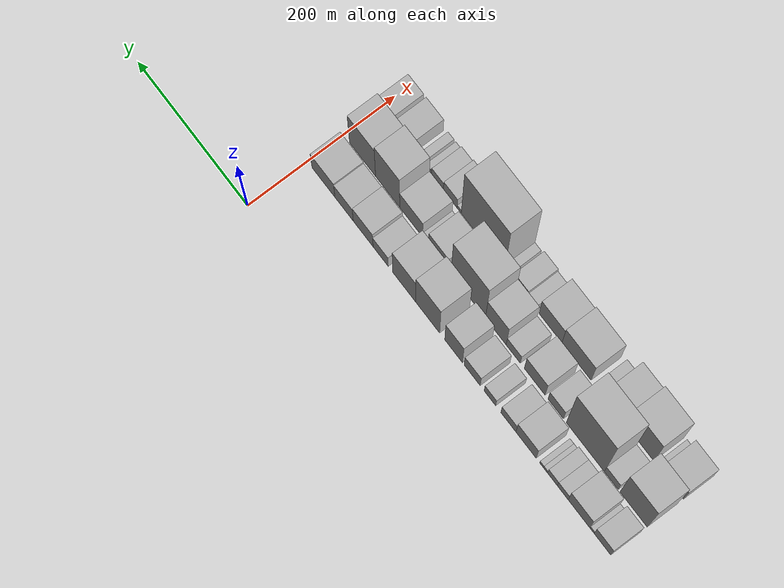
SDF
<sdf version="1.6">
 <world name="default">
  <model name="building_1">
   <static>1</static>
   <pose>100.0000 -521.6150 0 0.000000 0.000000 0.000000</pose>
   <link name="link">
    <pose>0 0 25.50 0 0 0</pose>
    <collision name="collision"><geometry><box><size>40.0000 28.7700 51.0000</size></box></geometry></collision>
    <visual name="visual">
     <cast_shadows>0</cast_shadows>
     <geometry><box><size>40.0000 28.7700 51.0000</size></box></geometry>
     <material>
      <script>
       <uri>model://HANNAS_wall/materials/scripts</uri>
       <uri>model://HANNAS_wall/materials/textures</uri>
       <name>vrc/HANNAS_wall</name>
      </script>
     </material>
    </visual>
   </link>
  </model>
  <model name="building_2">
   <static>1</static>
   <pose>100.0000 -503.5471 0 0.000000 0.000000 0.000000</pose>
   <link name="link">
    <pose>0 0 7.50 0 0 0</pose>
    <collision name="collision"><geometry><box><size>40.0000 7.3658 15.0000</size></box></geometry></collision>
    <visual name="visual">
     <cast_shadows>0</cast_shadows>
     <geometry><box><size>40.0000 7.3658 15.0000</size></box></geometry>
     <material>
      <script>
       <uri>model://HANNAS_wall/materials/scripts</uri>
       <uri>model://HANNAS_wall/materials/textures</uri>
       <name>vrc/HANNAS_wall</name>
      </script>
     </material>
    </visual>
   </link>
  </model>
  <model name="building_3">
   <static>1</static>
   <pose>100.0000 -481.0259 0 0.000000 0.000000 0.000000</pose>
   <link name="link">
    <pose>0 0 34.50 0 0 0</pose>
    <collision name="collision"><geometry><box><size>40.0000 37.6766 69.0000</size></box></geometry></collision>
    <visual name="visual">
     <cast_shadows>0</cast_shadows>
     <geometry><box><size>40.0000 37.6766 69.0000</size></box></geometry>
     <material>
      <script>
       <uri>model://HANNAS_wall/materials/scripts</uri>
       <uri>model://HANNAS_wall/materials/textures</uri>
       <name>vrc/HANNAS_wall</name>
      </script>
     </material>
    </visual>
   </link>
  </model>
  <model name="building_4">
   <static>1</static>
   <pose>100.0000 -452.8292 0 0.000000 0.000000 0.000000</pose>
   <link name="link">
    <pose>0 0 16.50 0 0 0</pose>
    <collision name="collision"><geometry><box><size>40.0000 18.7168 33.0000</size></box></geometry></collision>
    <visual name="visual">
     <cast_shadows>0</cast_shadows>
     <geometry><box><size>40.0000 18.7168 33.0000</size></box></geometry>
     <material>
      <script>
       <uri>model://HANNAS_wall/materials/scripts</uri>
       <uri>model://HANNAS_wall/materials/textures</uri>
       <name>vrc/HANNAS_wall</name>
      </script>
     </material>
    </visual>
   </link>
  </model>
  <model name="building_5">
   <static>1</static>
   <pose>100.0000 -434.8815 0 0.000000 0.000000 0.000000</pose>
   <link name="link">
    <pose>0 0 16.50 0 0 0</pose>
    <collision name="collision"><geometry><box><size>40.0000 17.1787 33.0000</size></box></geometry></collision>
    <visual name="visual">
     <cast_shadows>0</cast_shadows>
     <geometry><box><size>40.0000 17.1787 33.0000</size></box></geometry>
     <material>
      <script>
       <uri>model://HANNAS_wall/materials/scripts</uri>
       <uri>model://HANNAS_wall/materials/textures</uri>
       <name>vrc/HANNAS_wall</name>
      </script>
     </material>
    </visual>
   </link>
  </model>
  <model name="building_6">
   <static>1</static>
   <pose>100.0000 -422.8432 0 0.000000 0.000000 0.000000</pose>
   <link name="link">
    <pose>0 0 7.50 0 0 0</pose>
    <collision name="collision"><geometry><box><size>40.0000 6.8978 15.0000</size></box></geometry></collision>
    <visual name="visual">
     <cast_shadows>0</cast_shadows>
     <geometry><box><size>40.0000 6.8978 15.0000</size></box></geometry>
     <material>
      <script>
       <uri>model://HANNAS_wall/materials/scripts</uri>
       <uri>model://HANNAS_wall/materials/textures</uri>
       <name>vrc/HANNAS_wall</name>
      </script>
     </material>
    </visual>
   </link>
  </model>
  <model name="building_7">
   <static>1</static>
   <pose>100.0000 -415.9472 0 0.000000 0.000000 0.000000</pose>
   <link name="link">
    <pose>0 0 7.50 0 0 0</pose>
    <collision name="collision"><geometry><box><size>40.0000 6.8943 15.0000</size></box></geometry></collision>
    <visual name="visual">
     <cast_shadows>0</cast_shadows>
     <geometry><box><size>40.0000 6.8943 15.0000</size></box></geometry>
     <material>
      <script>
       <uri>model://HANNAS_wall/materials/scripts</uri>
       <uri>model://HANNAS_wall/materials/textures</uri>
       <name>vrc/HANNAS_wall</name>
      </script>
     </material>
    </visual>
   </link>
  </model>
  <model name="building_8">
   <static>1</static>
   <pose>100.0000 -388.7740 0 0.000000 0.000000 0.000000</pose>
   <link name="link">
    <pose>0 0 33.00 0 0 0</pose>
    <collision name="collision"><geometry><box><size>40.0000 35.4521 66.0000</size></box></geometry></collision>
    <visual name="visual">
     <cast_shadows>0</cast_shadows>
     <geometry><box><size>40.0000 35.4521 66.0000</size></box></geometry>
     <material>
      <script>
       <uri>model://HANNAS_wall/materials/scripts</uri>
       <uri>model://HANNAS_wall/materials/textures</uri>
       <name>vrc/HANNAS_wall</name>
      </script>
     </material>
    </visual>
   </link>
  </model>
  <model name="building_9">
   <static>1</static>
   <pose>100.0000 -357.8860 0 0.000000 0.000000 0.000000</pose>
   <link name="link">
    <pose>0 0 22.50 0 0 0</pose>
    <collision name="collision"><geometry><box><size>40.0000 26.3239 45.0000</size></box></geometry></collision>
    <visual name="visual">
     <cast_shadows>0</cast_shadows>
     <geometry><box><size>40.0000 26.3239 45.0000</size></box></geometry>
     <material>
      <script>
       <uri>model://HANNAS_wall/materials/scripts</uri>
       <uri>model://HANNAS_wall/materials/textures</uri>
       <name>vrc/HANNAS_wall</name>
      </script>
     </material>
    </visual>
   </link>
  </model>
  <model name="building_10">
   <static>1</static>
   <pose>100.0000 -325.5887 0 0.000000 0.000000 0.000000</pose>
   <link name="link">
    <pose>0 0 19.50 0 0 0</pose>
    <collision name="collision"><geometry><box><size>40.0000 20.2706 39.0000</size></box></geometry></collision>
    <visual name="visual">
     <cast_shadows>0</cast_shadows>
     <geometry><box><size>40.0000 20.2706 39.0000</size></box></geometry>
     <material>
      <script>
       <uri>model://HANNAS_wall/materials/scripts</uri>
       <uri>model://HANNAS_wall/materials/textures</uri>
       <name>vrc/HANNAS_wall</name>
      </script>
     </material>
    </visual>
   </link>
  </model>
  <model name="building_11">
   <static>1</static>
   <pose>100.0000 -294.3115 0 0.000000 0.000000 0.000000</pose>
   <link name="link">
    <pose>0 0 27.00 0 0 0</pose>
    <collision name="collision"><geometry><box><size>40.0000 28.2839 54.0000</size></box></geometry></collision>
    <visual name="visual">
     <cast_shadows>0</cast_shadows>
     <geometry><box><size>40.0000 28.2839 54.0000</size></box></geometry>
     <material>
      <script>
       <uri>model://HANNAS_wall/materials/scripts</uri>
       <uri>model://HANNAS_wall/materials/textures</uri>
       <name>vrc/HANNAS_wall</name>
      </script>
     </material>
    </visual>
   </link>
  </model>
  <model name="building_12">
   <static>1</static>
   <pose>100.0000 -261.5331 0 0.000000 0.000000 0.000000</pose>
   <link name="link">
    <pose>0 0 49.50 0 0 0</pose>
    <collision name="collision"><geometry><box><size>40.0000 31.2730 99.0000</size></box></geometry></collision>
    <visual name="visual">
     <cast_shadows>0</cast_shadows>
     <geometry><box><size>40.0000 31.2730 99.0000</size></box></geometry>
     <material>
      <script>
       <uri>model://HANNAS_wall/materials/scripts</uri>
       <uri>model://HANNAS_wall/materials/textures</uri>
       <name>vrc/HANNAS_wall</name>
      </script>
     </material>
    </visual>
   </link>
  </model>
  <model name="building_13">
   <static>1</static>
   <pose>100.0000 -215.6549 0 0.000000 0.000000 0.000000</pose>
   <link name="link">
    <pose>0 0 70.50 0 0 0</pose>
    <collision name="collision"><geometry><box><size>40.0000 42.4833 141.0000</size></box></geometry></collision>
    <visual name="visual">
     <cast_shadows>0</cast_shadows>
     <geometry><box><size>40.0000 42.4833 141.0000</size></box></geometry>
     <material>
      <script>
       <uri>model://HANNAS_wall/materials/scripts</uri>
       <uri>model://HANNAS_wall/materials/textures</uri>
       <name>vrc/HANNAS_wall</name>
      </script>
     </material>
    </visual>
   </link>
  </model>
  <model name="building_14">
   <static>1</static>
   <pose>100.0000 -174.0290 0 0.000000 0.000000 0.000000</pose>
   <link name="link">
    <pose>0 0 57.00 0 0 0</pose>
    <collision name="collision"><geometry><box><size>40.0000 40.7685 114.0000</size></box></geometry></collision>
    <visual name="visual">
     <cast_shadows>0</cast_shadows>
     <geometry><box><size>40.0000 40.7685 114.0000</size></box></geometry>
     <material>
      <script>
       <uri>model://HANNAS_wall/materials/scripts</uri>
       <uri>model://HANNAS_wall/materials/textures</uri>
       <name>vrc/HANNAS_wall</name>
      </script>
     </material>
    </visual>
   </link>
  </model>
  <model name="building_15">
   <static>1</static>
   <pose>100.0000 -132.1360 0 0.000000 0.000000 0.000000</pose>
   <link name="link">
    <pose>0 0 25.50 0 0 0</pose>
    <collision name="collision"><geometry><box><size>40.0000 27.0176 51.0000</size></box></geometry></collision>
    <visual name="visual">
     <cast_shadows>0</cast_shadows>
     <geometry><box><size>40.0000 27.0176 51.0000</size></box></geometry>
     <material>
      <script>
       <uri>model://HANNAS_wall/materials/scripts</uri>
       <uri>model://HANNAS_wall/materials/textures</uri>
       <name>vrc/HANNAS_wall</name>
      </script>
     </material>
    </visual>
   </link>
  </model>
  <model name="building_16">
   <static>1</static>
   <pose>100.0000 -100.8448 0 0.000000 0.000000 0.000000</pose>
   <link name="link">
    <pose>0 0 34.50 0 0 0</pose>
    <collision name="collision"><geometry><box><size>40.0000 35.5646 69.0000</size></box></geometry></collision>
    <visual name="visual">
     <cast_shadows>0</cast_shadows>
     <geometry><box><size>40.0000 35.5646 69.0000</size></box></geometry>
     <material>
      <script>
       <uri>model://HANNAS_wall/materials/scripts</uri>
       <uri>model://HANNAS_wall/materials/textures</uri>
       <name>vrc/HANNAS_wall</name>
      </script>
     </material>
    </visual>
   </link>
  </model>
  <model name="building_17">
   <static>1</static>
   <pose>100.0000 -66.6358 0 0.000000 0.000000 0.000000</pose>
   <link name="link">
    <pose>0 0 31.50 0 0 0</pose>
    <collision name="collision"><geometry><box><size>40.0000 32.8534 63.0000</size></box></geometry></collision>
    <visual name="visual">
     <cast_shadows>0</cast_shadows>
     <geometry><box><size>40.0000 32.8534 63.0000</size></box></geometry>
     <material>
      <script>
       <uri>model://HANNAS_wall/materials/scripts</uri>
       <uri>model://HANNAS_wall/materials/textures</uri>
       <name>vrc/HANNAS_wall</name>
      </script>
     </material>
    </visual>
   </link>
  </model>
  <model name="building_18">
   <static>1</static>
   <pose>100.0000 -29.5664 0 0.000000 0.000000 0.000000</pose>
   <link name="link">
    <pose>0 0 34.50 0 0 0</pose>
    <collision name="collision"><geometry><box><size>40.0000 41.2854 69.0000</size></box></geometry></collision>
    <visual name="visual">
     <cast_shadows>0</cast_shadows>
     <geometry><box><size>40.0000 41.2854 69.0000</size></box></geometry>
     <material>
      <script>
       <uri>model://HANNAS_wall/materials/scripts</uri>
       <uri>model://HANNAS_wall/materials/textures</uri>
       <name>vrc/HANNAS_wall</name>
      </script>
     </material>
    </visual>
   </link>
  </model>
  <model name="building_34">
   <static>1</static>
   <pose>149.0000 -512.4426 0 0.000000 0.000000 0.000000</pose>
   <link name="link">
    <pose>0 0 75.00 0 0 0</pose>
    <collision name="collision"><geometry><box><size>40.0000 47.1148 150.0000</size></box></geometry></collision>
    <visual name="visual">
     <cast_shadows>0</cast_shadows>
     <geometry><box><size>40.0000 47.1148 150.0000</size></box></geometry>
     <material>
      <script>
       <uri>model://HANNAS_wall/materials/scripts</uri>
       <uri>model://HANNAS_wall/materials/textures</uri>
       <name>vrc/HANNAS_wall</name>
      </script>
     </material>
    </visual>
   </link>
  </model>
  <model name="building_35">
   <static>1</static>
   <pose>149.0000 -473.7912 0 0.000000 0.000000 0.000000</pose>
   <link name="link">
    <pose>0 0 21.00 0 0 0</pose>
    <collision name="collision"><geometry><box><size>40.0000 24.1881 42.0000</size></box></geometry></collision>
    <visual name="visual">
     <cast_shadows>0</cast_shadows>
     <geometry><box><size>40.0000 24.1881 42.0000</size></box></geometry>
     <material>
      <script>
       <uri>model://HANNAS_wall/materials/scripts</uri>
       <uri>model://HANNAS_wall/materials/textures</uri>
       <name>vrc/HANNAS_wall</name>
      </script>
     </material>
    </visual>
   </link>
  </model>
  <model name="building_36">
   <static>1</static>
   <pose>149.0000 -428.6505 0 0.000000 0.000000 0.000000</pose>
   <link name="link">
    <pose>0 0 105.00 0 0 0</pose>
    <collision name="collision"><geometry><box><size>40.0000 66.0934 210.0000</size></box></geometry></collision>
    <visual name="visual">
     <cast_shadows>0</cast_shadows>
     <geometry><box><size>40.0000 66.0934 210.0000</size></box></geometry>
     <material>
      <script>
       <uri>model://HANNAS_wall/materials/scripts</uri>
       <uri>model://HANNAS_wall/materials/textures</uri>
       <name>vrc/HANNAS_wall</name>
      </script>
     </material>
    </visual>
   </link>
  </model>
  <model name="building_37">
   <static>1</static>
   <pose>149.0000 -377.1060 0 0.000000 0.000000 0.000000</pose>
   <link name="link">
    <pose>0 0 25.50 0 0 0</pose>
    <collision name="collision"><geometry><box><size>40.0000 26.9956 51.0000</size></box></geometry></collision>
    <visual name="visual">
     <cast_shadows>0</cast_shadows>
     <geometry><box><size>40.0000 26.9956 51.0000</size></box></geometry>
     <material>
      <script>
       <uri>model://HANNAS_wall/materials/scripts</uri>
       <uri>model://HANNAS_wall/materials/textures</uri>
       <name>vrc/HANNAS_wall</name>
      </script>
     </material>
    </visual>
   </link>
  </model>
  <model name="building_38">
   <static>1</static>
   <pose>149.0000 -340.4035 0 0.000000 0.000000 0.000000</pose>
   <link name="link">
    <pose>0 0 36.00 0 0 0</pose>
    <collision name="collision"><geometry><box><size>40.0000 36.4095 72.0000</size></box></geometry></collision>
    <visual name="visual">
     <cast_shadows>0</cast_shadows>
     <geometry><box><size>40.0000 36.4095 72.0000</size></box></geometry>
     <material>
      <script>
       <uri>model://HANNAS_wall/materials/scripts</uri>
       <uri>model://HANNAS_wall/materials/textures</uri>
       <name>vrc/HANNAS_wall</name>
      </script>
     </material>
    </visual>
   </link>
  </model>
  <model name="building_39">
   <static>1</static>
   <pose>149.0000 -302.6995 0 0.000000 0.000000 0.000000</pose>
   <link name="link">
    <pose>0 0 22.50 0 0 0</pose>
    <collision name="collision"><geometry><box><size>40.0000 24.9985 45.0000</size></box></geometry></collision>
    <visual name="visual">
     <cast_shadows>0</cast_shadows>
     <geometry><box><size>40.0000 24.9985 45.0000</size></box></geometry>
     <material>
      <script>
       <uri>model://HANNAS_wall/materials/scripts</uri>
       <uri>model://HANNAS_wall/materials/textures</uri>
       <name>vrc/HANNAS_wall</name>
      </script>
     </material>
    </visual>
   </link>
  </model>
  <model name="building_40">
   <static>1</static>
   <pose>149.0000 -271.9378 0 0.000000 0.000000 0.000000</pose>
   <link name="link">
    <pose>0 0 52.50 0 0 0</pose>
    <collision name="collision"><geometry><box><size>40.0000 36.5248 105.0000</size></box></geometry></collision>
    <visual name="visual">
     <cast_shadows>0</cast_shadows>
     <geometry><box><size>40.0000 36.5248 105.0000</size></box></geometry>
     <material>
      <script>
       <uri>model://HANNAS_wall/materials/scripts</uri>
       <uri>model://HANNAS_wall/materials/textures</uri>
       <name>vrc/HANNAS_wall</name>
      </script>
     </material>
    </visual>
   </link>
  </model>
  <model name="building_41">
   <static>1</static>
   <pose>149.0000 -223.2743 0 0.000000 0.000000 0.000000</pose>
   <link name="link">
    <pose>0 0 87.00 0 0 0</pose>
    <collision name="collision"><geometry><box><size>40.0000 60.8022 174.0000</size></box></geometry></collision>
    <visual name="visual">
     <cast_shadows>0</cast_shadows>
     <geometry><box><size>40.0000 60.8022 174.0000</size></box></geometry>
     <material>
      <script>
       <uri>model://HANNAS_wall/materials/scripts</uri>
       <uri>model://HANNAS_wall/materials/textures</uri>
       <name>vrc/HANNAS_wall</name>
      </script>
     </material>
    </visual>
   </link>
  </model>
  <model name="building_42">
   <static>1</static>
   <pose>149.0000 -170.3373 0 0.000000 0.000000 0.000000</pose>
   <link name="link">
    <pose>0 0 31.50 0 0 0</pose>
    <collision name="collision"><geometry><box><size>40.0000 35.0718 63.0000</size></box></geometry></collision>
    <visual name="visual">
     <cast_shadows>0</cast_shadows>
     <geometry><box><size>40.0000 35.0718 63.0000</size></box></geometry>
     <material>
      <script>
       <uri>model://HANNAS_wall/materials/scripts</uri>
       <uri>model://HANNAS_wall/materials/textures</uri>
       <name>vrc/HANNAS_wall</name>
      </script>
     </material>
    </visual>
   </link>
  </model>
  <model name="building_43">
   <static>1</static>
   <pose>149.0000 -147.5748 0 0.000000 0.000000 0.000000</pose>
   <link name="link">
    <pose>0 0 12.00 0 0 0</pose>
    <collision name="collision"><geometry><box><size>40.0000 10.4531 24.0000</size></box></geometry></collision>
    <visual name="visual">
     <cast_shadows>0</cast_shadows>
     <geometry><box><size>40.0000 10.4531 24.0000</size></box></geometry>
     <material>
      <script>
       <uri>model://HANNAS_wall/materials/scripts</uri>
       <uri>model://HANNAS_wall/materials/textures</uri>
       <name>vrc/HANNAS_wall</name>
      </script>
     </material>
    </visual>
   </link>
  </model>
  <model name="building_44">
   <static>1</static>
   <pose>149.0000 -121.9621 0 0.000000 0.000000 0.000000</pose>
   <link name="link">
    <pose>0 0 37.50 0 0 0</pose>
    <collision name="collision"><geometry><box><size>40.0000 40.7721 75.0000</size></box></geometry></collision>
    <visual name="visual">
     <cast_shadows>0</cast_shadows>
     <geometry><box><size>40.0000 40.7721 75.0000</size></box></geometry>
     <material>
      <script>
       <uri>model://HANNAS_wall/materials/scripts</uri>
       <uri>model://HANNAS_wall/materials/textures</uri>
       <name>vrc/HANNAS_wall</name>
      </script>
     </material>
    </visual>
   </link>
  </model>
  <model name="building_45">
   <static>1</static>
   <pose>149.0000 -79.8908 0 0.000000 0.000000 0.000000</pose>
   <link name="link">
    <pose>0 0 72.00 0 0 0</pose>
    <collision name="collision"><geometry><box><size>40.0000 43.3705 144.0000</size></box></geometry></collision>
    <visual name="visual">
     <cast_shadows>0</cast_shadows>
     <geometry><box><size>40.0000 43.3705 144.0000</size></box></geometry>
     <material>
      <script>
       <uri>model://HANNAS_wall/materials/scripts</uri>
       <uri>model://HANNAS_wall/materials/textures</uri>
       <name>vrc/HANNAS_wall</name>
      </script>
     </material>
    </visual>
   </link>
  </model>
  <model name="building_46">
   <static>1</static>
   <pose>149.0000 -34.8146 0 0.000000 0.000000 0.000000</pose>
   <link name="link">
    <pose>0 0 64.50 0 0 0</pose>
    <collision name="collision"><geometry><box><size>40.0000 46.7821 129.0000</size></box></geometry></collision>
    <visual name="visual">
     <cast_shadows>0</cast_shadows>
     <geometry><box><size>40.0000 46.7821 129.0000</size></box></geometry>
     <material>
      <script>
       <uri>model://HANNAS_wall/materials/scripts</uri>
       <uri>model://HANNAS_wall/materials/textures</uri>
       <name>vrc/HANNAS_wall</name>
      </script>
     </material>
    </visual>
   </link>
  </model>
  <model name="building_64">
   <static>1</static>
   <pose>198.0000 -516.4063 0 0.000000 0.000000 0.000000</pose>
   <link name="link">
    <pose>0 0 33.00 0 0 0</pose>
    <collision name="collision"><geometry><box><size>40.0000 39.1875 66.0000</size></box></geometry></collision>
    <visual name="visual">
     <cast_shadows>0</cast_shadows>
     <geometry><box><size>40.0000 39.1875 66.0000</size></box></geometry>
     <material>
      <script>
       <uri>model://HANNAS_wall/materials/scripts</uri>
       <uri>model://HANNAS_wall/materials/textures</uri>
       <name>vrc/HANNAS_wall</name>
      </script>
     </material>
    </visual>
   </link>
  </model>
  <model name="building_65">
   <static>1</static>
   <pose>198.0000 -492.7581 0 0.000000 0.000000 0.000000</pose>
   <link name="link">
    <pose>0 0 9.00 0 0 0</pose>
    <collision name="collision"><geometry><box><size>40.0000 8.1089 18.0000</size></box></geometry></collision>
    <visual name="visual">
     <cast_shadows>0</cast_shadows>
     <geometry><box><size>40.0000 8.1089 18.0000</size></box></geometry>
     <material>
      <script>
       <uri>model://HANNAS_wall/materials/scripts</uri>
       <uri>model://HANNAS_wall/materials/textures</uri>
       <name>vrc/HANNAS_wall</name>
      </script>
     </material>
    </visual>
   </link>
  </model>
  <model name="building_66">
   <static>1</static>
   <pose>198.0000 -460.4616 0 0.000000 0.000000 0.000000</pose>
   <link name="link">
    <pose>0 0 64.50 0 0 0</pose>
    <collision name="collision"><geometry><box><size>40.0000 48.4841 129.0000</size></box></geometry></collision>
    <visual name="visual">
     <cast_shadows>0</cast_shadows>
     <geometry><box><size>40.0000 48.4841 129.0000</size></box></geometry>
     <material>
      <script>
       <uri>model://HANNAS_wall/materials/scripts</uri>
       <uri>model://HANNAS_wall/materials/textures</uri>
       <name>vrc/HANNAS_wall</name>
      </script>
     </material>
    </visual>
   </link>
  </model>
  <model name="building_67">
   <static>1</static>
   <pose>198.0000 -418.8026 0 0.000000 0.000000 0.000000</pose>
   <link name="link">
    <pose>0 0 55.50 0 0 0</pose>
    <collision name="collision"><geometry><box><size>40.0000 34.8338 111.0000</size></box></geometry></collision>
    <visual name="visual">
     <cast_shadows>0</cast_shadows>
     <geometry><box><size>40.0000 34.8338 111.0000</size></box></geometry>
     <material>
      <script>
       <uri>model://HANNAS_wall/materials/scripts</uri>
       <uri>model://HANNAS_wall/materials/textures</uri>
       <name>vrc/HANNAS_wall</name>
      </script>
     </material>
    </visual>
   </link>
  </model>
  <model name="building_68">
   <static>1</static>
   <pose>198.0000 -392.5256 0 0.000000 0.000000 0.000000</pose>
   <link name="link">
    <pose>0 0 16.50 0 0 0</pose>
    <collision name="collision"><geometry><box><size>40.0000 17.7202 33.0000</size></box></geometry></collision>
    <visual name="visual">
     <cast_shadows>0</cast_shadows>
     <geometry><box><size>40.0000 17.7202 33.0000</size></box></geometry>
     <material>
      <script>
       <uri>model://HANNAS_wall/materials/scripts</uri>
       <uri>model://HANNAS_wall/materials/textures</uri>
       <name>vrc/HANNAS_wall</name>
      </script>
     </material>
    </visual>
   </link>
  </model>
  <model name="building_69">
   <static>1</static>
   <pose>198.0000 -350.1595 0 0.000000 0.000000 0.000000</pose>
   <link name="link">
    <pose>0 0 45.00 0 0 0</pose>
    <collision name="collision"><geometry><box><size>40.0000 51.0120 90.0000</size></box></geometry></collision>
    <visual name="visual">
     <cast_shadows>0</cast_shadows>
     <geometry><box><size>40.0000 51.0120 90.0000</size></box></geometry>
     <material>
      <script>
       <uri>model://HANNAS_wall/materials/scripts</uri>
       <uri>model://HANNAS_wall/materials/textures</uri>
       <name>vrc/HANNAS_wall</name>
      </script>
     </material>
    </visual>
   </link>
  </model>
  <model name="building_70">
   <static>1</static>
   <pose>198.0000 -304.5353 0 0.000000 0.000000 0.000000</pose>
   <link name="link">
    <pose>0 0 39.00 0 0 0</pose>
    <collision name="collision"><geometry><box><size>40.0000 40.2365 78.0000</size></box></geometry></collision>
    <visual name="visual">
     <cast_shadows>0</cast_shadows>
     <geometry><box><size>40.0000 40.2365 78.0000</size></box></geometry>
     <material>
      <script>
       <uri>model://HANNAS_wall/materials/scripts</uri>
       <uri>model://HANNAS_wall/materials/textures</uri>
       <name>vrc/HANNAS_wall</name>
      </script>
     </material>
    </visual>
   </link>
  </model>
  <model name="building_71">
   <static>1</static>
   <pose>198.0000 -272.0760 0 0.000000 0.000000 0.000000</pose>
   <link name="link">
    <pose>0 0 15.00 0 0 0</pose>
    <collision name="collision"><geometry><box><size>40.0000 16.6822 30.0000</size></box></geometry></collision>
    <visual name="visual">
     <cast_shadows>0</cast_shadows>
     <geometry><box><size>40.0000 16.6822 30.0000</size></box></geometry>
     <material>
      <script>
       <uri>model://HANNAS_wall/materials/scripts</uri>
       <uri>model://HANNAS_wall/materials/textures</uri>
       <name>vrc/HANNAS_wall</name>
      </script>
     </material>
    </visual>
   </link>
  </model>
  <model name="building_72">
   <static>1</static>
   <pose>198.0000 -251.3331 0 0.000000 0.000000 0.000000</pose>
   <link name="link">
    <pose>0 0 21.00 0 0 0</pose>
    <collision name="collision"><geometry><box><size>40.0000 24.8036 42.0000</size></box></geometry></collision>
    <visual name="visual">
     <cast_shadows>0</cast_shadows>
     <geometry><box><size>40.0000 24.8036 42.0000</size></box></geometry>
     <material>
      <script>
       <uri>model://HANNAS_wall/materials/scripts</uri>
       <uri>model://HANNAS_wall/materials/textures</uri>
       <name>vrc/HANNAS_wall</name>
      </script>
     </material>
    </visual>
   </link>
  </model>
  <model name="building_73">
   <static>1</static>
   <pose>198.0000 -229.3434 0 0.000000 0.000000 0.000000</pose>
   <link name="link">
    <pose>0 0 13.50 0 0 0</pose>
    <collision name="collision"><geometry><box><size>40.0000 11.1757 27.0000</size></box></geometry></collision>
    <visual name="visual">
     <cast_shadows>0</cast_shadows>
     <geometry><box><size>40.0000 11.1757 27.0000</size></box></geometry>
     <material>
      <script>
       <uri>model://HANNAS_wall/materials/scripts</uri>
       <uri>model://HANNAS_wall/materials/textures</uri>
       <name>vrc/HANNAS_wall</name>
      </script>
     </material>
    </visual>
   </link>
  </model>
  <model name="building_74">
   <static>1</static>
   <pose>198.0000 -185.3201 0 0.000000 0.000000 0.000000</pose>
   <link name="link">
    <pose>0 0 102.00 0 0 0</pose>
    <collision name="collision"><geometry><box><size>40.0000 76.8711 204.0000</size></box></geometry></collision>
    <visual name="visual">
     <cast_shadows>0</cast_shadows>
     <geometry><box><size>40.0000 76.8711 204.0000</size></box></geometry>
     <material>
      <script>
       <uri>model://HANNAS_wall/materials/scripts</uri>
       <uri>model://HANNAS_wall/materials/textures</uri>
       <name>vrc/HANNAS_wall</name>
      </script>
     </material>
    </visual>
   </link>
  </model>
  <model name="building_75">
   <static>1</static>
   <pose>198.0000 -143.2067 0 0.000000 0.000000 0.000000</pose>
   <link name="link">
    <pose>0 0 7.50 0 0 0</pose>
    <collision name="collision"><geometry><box><size>40.0000 7.3557 15.0000</size></box></geometry></collision>
    <visual name="visual">
     <cast_shadows>0</cast_shadows>
     <geometry><box><size>40.0000 7.3557 15.0000</size></box></geometry>
     <material>
      <script>
       <uri>model://HANNAS_wall/materials/scripts</uri>
       <uri>model://HANNAS_wall/materials/textures</uri>
       <name>vrc/HANNAS_wall</name>
      </script>
     </material>
    </visual>
   </link>
  </model>
  <model name="building_76">
   <static>1</static>
   <pose>198.0000 -127.3679 0 0.000000 0.000000 0.000000</pose>
   <link name="link">
    <pose>0 0 22.50 0 0 0</pose>
    <collision name="collision"><geometry><box><size>40.0000 24.3219 45.0000</size></box></geometry></collision>
    <visual name="visual">
     <cast_shadows>0</cast_shadows>
     <geometry><box><size>40.0000 24.3219 45.0000</size></box></geometry>
     <material>
      <script>
       <uri>model://HANNAS_wall/materials/scripts</uri>
       <uri>model://HANNAS_wall/materials/textures</uri>
       <name>vrc/HANNAS_wall</name>
      </script>
     </material>
    </visual>
   </link>
  </model>
  <model name="building_77">
   <static>1</static>
   <pose>198.0000 -104.6238 0 0.000000 0.000000 0.000000</pose>
   <link name="link">
    <pose>0 0 18.00 0 0 0</pose>
    <collision name="collision"><geometry><box><size>40.0000 21.1663 36.0000</size></box></geometry></collision>
    <visual name="visual">
     <cast_shadows>0</cast_shadows>
     <geometry><box><size>40.0000 21.1663 36.0000</size></box></geometry>
     <material>
      <script>
       <uri>model://HANNAS_wall/materials/scripts</uri>
       <uri>model://HANNAS_wall/materials/textures</uri>
       <name>vrc/HANNAS_wall</name>
      </script>
     </material>
    </visual>
   </link>
  </model>
  <model name="building_78">
   <static>1</static>
   <pose>198.0000 -89.1447 0 0.000000 0.000000 0.000000</pose>
   <link name="link">
    <pose>0 0 12.00 0 0 0</pose>
    <collision name="collision"><geometry><box><size>40.0000 9.7917 24.0000</size></box></geometry></collision>
    <visual name="visual">
     <cast_shadows>0</cast_shadows>
     <geometry><box><size>40.0000 9.7917 24.0000</size></box></geometry>
     <material>
      <script>
       <uri>model://HANNAS_wall/materials/scripts</uri>
       <uri>model://HANNAS_wall/materials/textures</uri>
       <name>vrc/HANNAS_wall</name>
      </script>
     </material>
    </visual>
   </link>
  </model>
  <model name="building_79">
   <static>1</static>
   <pose>198.0000 -75.8667 0 0.000000 0.000000 0.000000</pose>
   <link name="link">
    <pose>0 0 12.00 0 0 0</pose>
    <collision name="collision"><geometry><box><size>40.0000 10.7644 24.0000</size></box></geometry></collision>
    <visual name="visual">
     <cast_shadows>0</cast_shadows>
     <geometry><box><size>40.0000 10.7644 24.0000</size></box></geometry>
     <material>
      <script>
       <uri>model://HANNAS_wall/materials/scripts</uri>
       <uri>model://HANNAS_wall/materials/textures</uri>
       <name>vrc/HANNAS_wall</name>
      </script>
     </material>
    </visual>
   </link>
  </model>
  <model name="building_80">
   <static>1</static>
   <pose>198.0000 -46.9255 0 0.000000 0.000000 0.000000</pose>
   <link name="link">
    <pose>0 0 27.00 0 0 0</pose>
    <collision name="collision"><geometry><box><size>40.0000 31.1180 54.0000</size></box></geometry></collision>
    <visual name="visual">
     <cast_shadows>0</cast_shadows>
     <geometry><box><size>40.0000 31.1180 54.0000</size></box></geometry>
     <material>
      <script>
       <uri>model://HANNAS_wall/materials/scripts</uri>
       <uri>model://HANNAS_wall/materials/textures</uri>
       <name>vrc/HANNAS_wall</name>
      </script>
     </material>
    </visual>
   </link>
  </model>
  <model name="building_81">
   <static>1</static>
   <pose>198.0000 -13.4359 0 0.000000 0.000000 0.000000</pose>
   <link name="link">
    <pose>0 0 27.00 0 0 0</pose>
    <collision name="collision"><geometry><box><size>40.0000 27.8613 54.0000</size></box></geometry></collision>
    <visual name="visual">
     <cast_shadows>0</cast_shadows>
     <geometry><box><size>40.0000 27.8613 54.0000</size></box></geometry>
     <material>
      <script>
       <uri>model://HANNAS_wall/materials/scripts</uri>
       <uri>model://HANNAS_wall/materials/textures</uri>
       <name>vrc/HANNAS_wall</name>
      </script>
     </material>
    </visual>
   </link>
  </model>
 </world>
</sdf>
